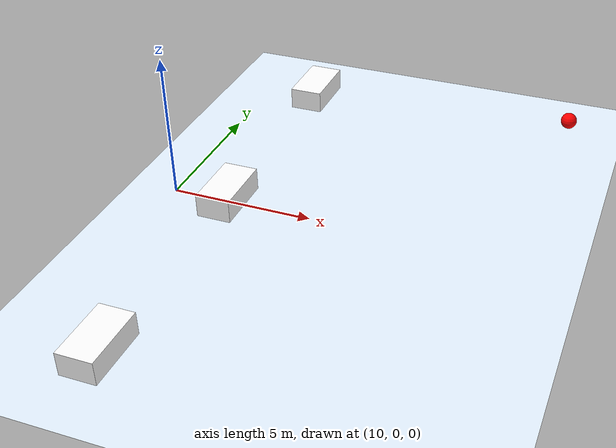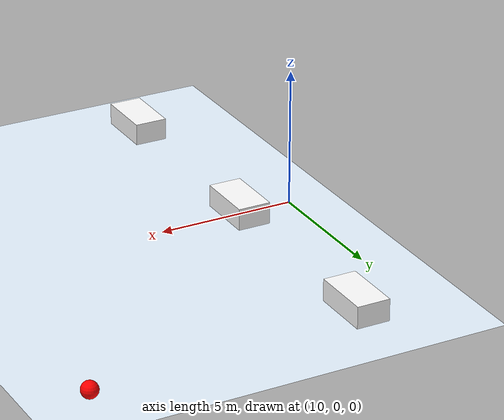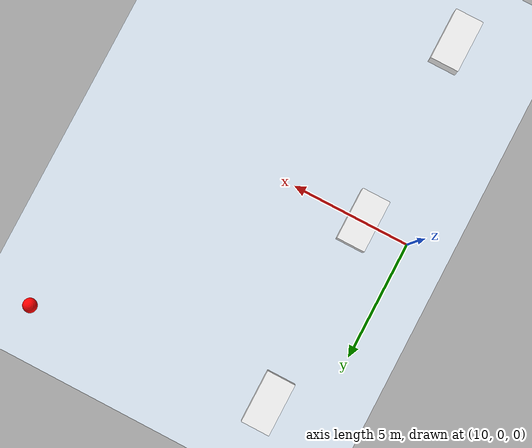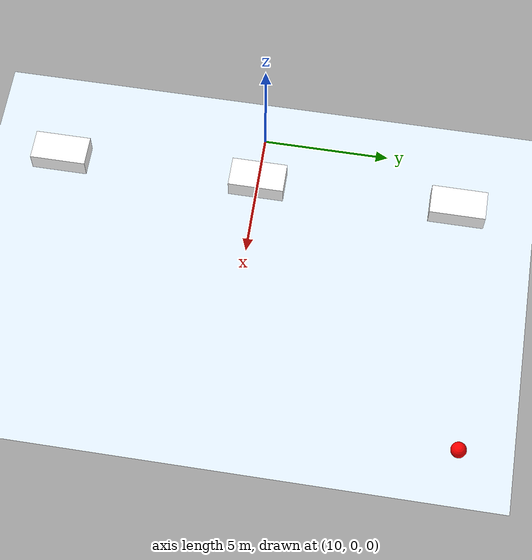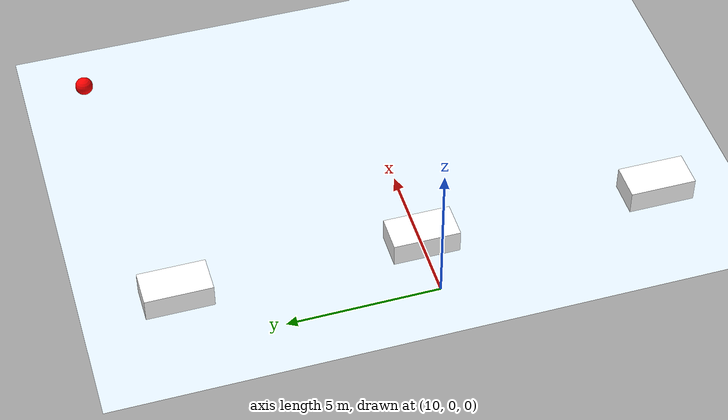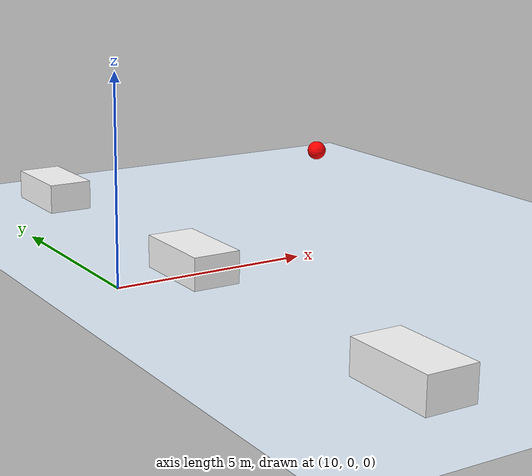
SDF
<?xml version="1.0" ?>
<sdf version="1.7">
  <world name="warehouse">

    <physics name="1ms" type="ignored">
      <max_step_size>0.001</max_step_size>
      <real_time_factor>2.5</real_time_factor>
      <real_time_update_rate>2000</real_time_update_rate>
    </physics>

    <!-- Essential Systems -->
    <plugin filename="libgz-sim-physics-system.so" name="gz::sim::systems::Physics"/>
    <plugin filename="libgz-sim-user-commands-system.so" name="gz::sim::systems::UserCommands"/>
    <plugin filename="libgz-sim-scene-broadcaster-system.so" name="gz::sim::systems::SceneBroadcaster"/>
    <plugin filename="libgz-sim-sensors-system.so" name="gz::sim::systems::Sensors"/>

    <!-- HIGH INTENSITY CLINICAL LIGHTS -->
    <light type="directional" name="sun">
      <pose>0 0 20 0 0 0</pose>
      <diffuse>1.0 1.0 1.0 1</diffuse>
      <specular>0.5 0.5 0.5 1</specular>
      <direction>-0.5 -0.1 -0.9</direction>
    </light>

    <!-- Ceiling Grid Lights -->
    <light type="point" name="l1"><pose>-10 10 4 0 0 0</pose><diffuse>1 1 1 1</diffuse></light>
    <light type="point" name="l2"><pose>10 10 4 0 0 0</pose><diffuse>1 1 1 1</diffuse></light>
    <light type="point" name="l3"><pose>-10 -10 4 0 0 0</pose><diffuse>1 1 1 1</diffuse></light>
    <light type="point" name="l4"><pose>10 -10 4 0 0 0</pose><diffuse>1 1 1 1</diffuse></light>

    <!-- PREMIUM HOSPITAL FLOOR -->
    <model name="hospital_floor">
      <static>true</static>
      <link name="link">
        <collision name="collision"><geometry><plane><normal>0 0 1</normal><size>60 40</size></plane></geometry></collision>
        <visual name="visual">
          <geometry><plane><normal>0 0 1</normal><size>60 40</size></plane></geometry>
          <material>
            <ambient>0.9 0.95 1.0 1</ambient>
            <diffuse>0.9 0.95 1.0 1</diffuse>
            <specular>1 1 1 1</specular>
          </material>
        </visual>
      </link>
    </model>

    <!-- WIDE OPEN WARD (Path is clear for the robot) -->
    <model name="bed1"><static>true</static><pose>12 8 0.4 0 0 1.57</pose><link name="l"><visual name="v"><geometry><box><size>2.2 1.2 0.8</size></box></geometry><material><ambient>1 1 1 1</ambient></material></visual></link></model>
    <model name="bed2"><static>true</static><pose>12 0 0.4 0 0 1.57</pose><link name="l"><visual name="v"><geometry><box><size>2.2 1.2 0.8</size></box></geometry><material><ambient>1 1 1 1</ambient></material></visual></link></model>
    <model name="bed3"><static>true</static><pose>12 -8 0.4 0 0 1.57</pose><link name="l"><visual name="v"><geometry><box><size>2.2 1.2 0.8</size></box></geometry><material><ambient>1 1 1 1</ambient></material></visual></link></model>

    <!-- TARGET RED SPHERE -->
    <model name="red_sphere">
      <static>false</static>
      <pose>22.0 9.0 0.3 0 0 0</pose>
      <link name="link">
        <collision name="collision"><geometry><sphere><radius>0.3</radius></sphere></geometry></collision>
        <visual name="visual">
          <geometry><sphere><radius>0.3</radius></sphere></geometry>
          <material><ambient>1 0 0 1</ambient><diffuse>1 0 0 1</diffuse><specular>1 1 1 1</specular></material>
        </visual>
      </link>
    </model>

  </world>
</sdf>
